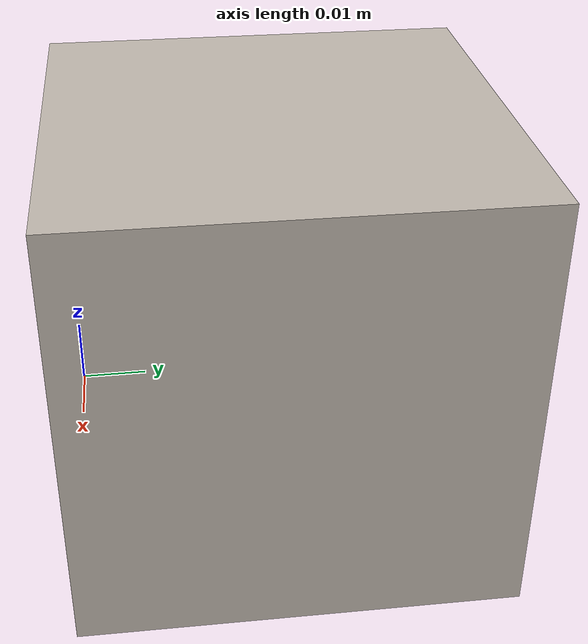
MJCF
<mujoco model="rubik-v1.50">
	<asset>
		<!-- 简化纹理定义，移除网格布局，使用正确的相对路径 -->
		<texture name='rubik' file="../textures/rubik/rubik.png" type="2d"/>
		<material name="MatRubik" texture="rubik" specular="1" shininess=".3" reflectance="0"/>
	</asset>

	<!--
		Isaac Sim 兼容版本:
		1. 移除了纹理的 gridsize 和 gridlayout 属性
		2. 将多个关节分解为嵌套的 body 结构以避免单个 body 包含过多关节
		3. 保持原有的物理特性
	-->

	<worldbody>
		<!-- 平移关节的嵌套结构 -->
		<body name="cube_base" pos="0 0 0">
			<joint name="cube_tx" type="slide" axis="1 0 0" limited="false"/>
			<body name="cube_intermediate_x" pos="0 0 0">
				<joint name="cube_ty" type="slide" axis="0 1 0" limited="false"/>
				<body name="cube_intermediate_y" pos="0 0 0">
					<joint name="cube_tz" type="slide" axis="0 0 1" limited="false"/>
					<body name="middle" pos=".0285 .0285 .0285">
						<joint name="cube_rot" type="ball" limited="false"/>
						<geom name="middle" type="box" size=".0285 .0285 .0285" material="MatRubik" condim="4"/>
						<site name="center" pos="0 0 0" rgba="1 0 0 1" size="0.01 0.01 0.01"></site>
					</body>
				</body>
			</body>
		</body>

		<!-- 注释边界保持不变 -->
		<body name="annotation:outer_bound" pos="0.0285 0.0285 0.0285">
			<geom conaffinity="0" contype="0" mass="0" pos="0 0 0" rgba="0.417022 0.720324 0.000114 0.1" size="0.0285 0.0285 0.0285" type="box"></geom>
		</body>
	</worldbody>

</mujoco>
